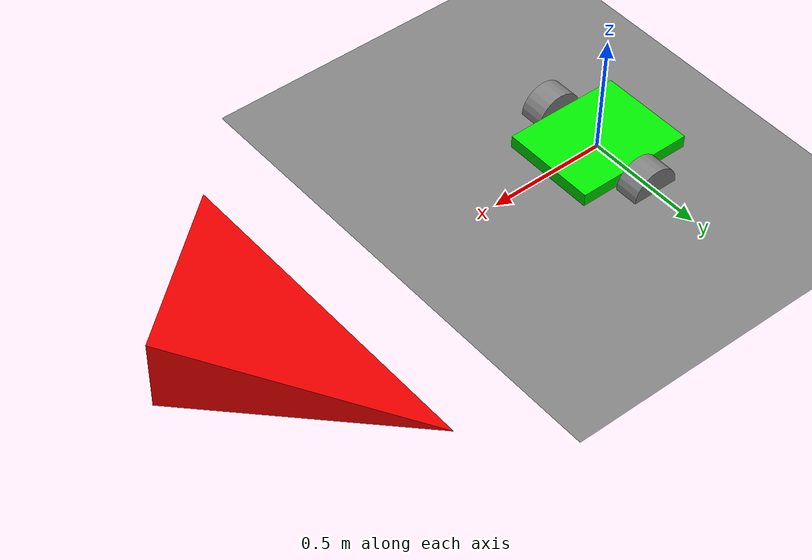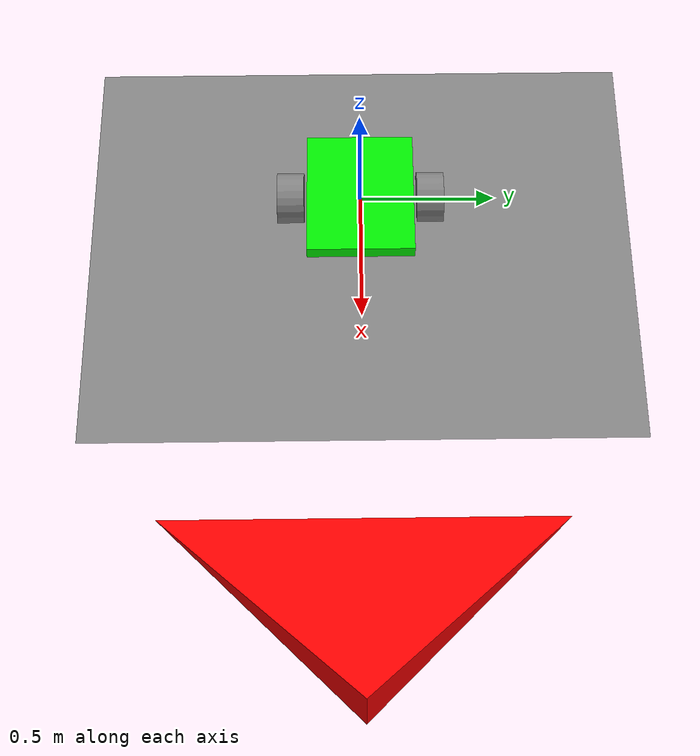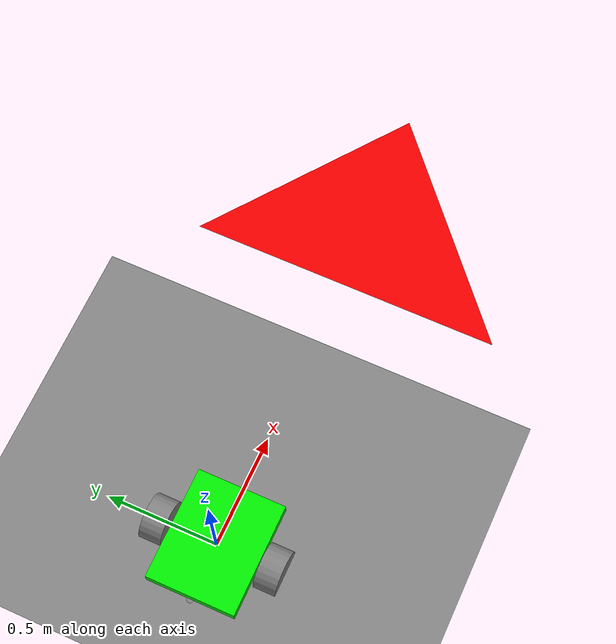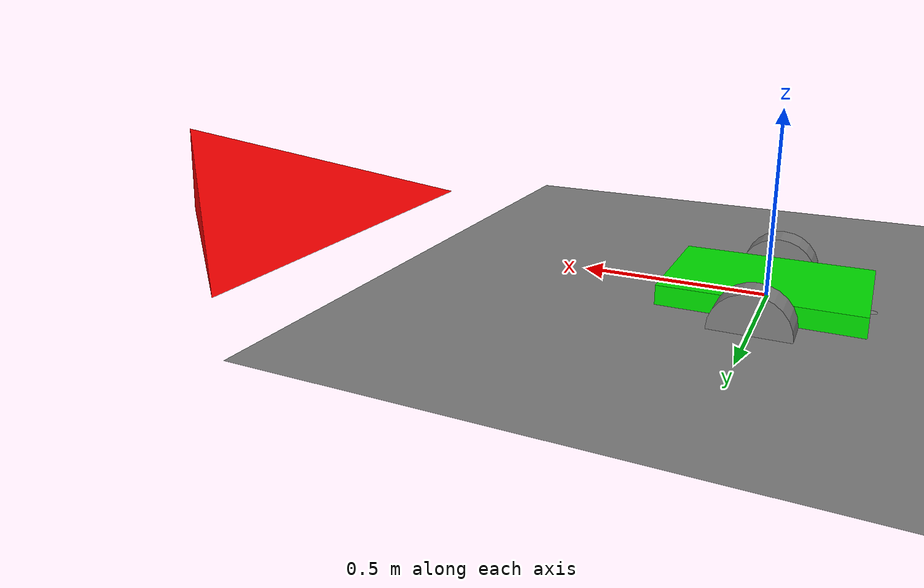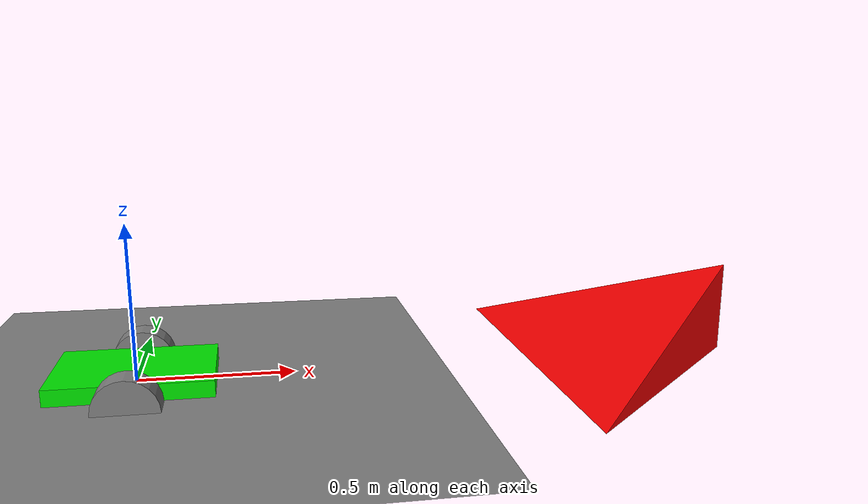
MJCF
<mujoco>
	<option timestep="0.01" integrator="RK4" gravity="0 0 -9.81">
		<flag energy="enable" contact="enable" />
	</option>

	<asset>
		<texture name="grid" type="2d" builtin="checker" width="512" height="512" rgb1=".9 .9 .9" rgb2=".1 .1 .1"/>
		<material name="grid" texture="grid" texrepeat="10 10" texuniform="true" reflectance=".2"/>

		<mesh name="tetrahedron" vertex="0 0 0  1 0 0  0 1 0  0 0 0.3"/>
	</asset>

	<worldbody>
        <light diffuse=".5 .5 .5" pos="0 0 3" dir="0 0 -1"/>

		<geom type="plane" size="1 1 0.1" material="grid"/>

		<geom type="mesh" mesh="tetrahedron" pos="2 0 0" euler="0 0 135" rgba="1 0 0 1" />

		<!-- Begin chassis -->
		<body name="chassis" pos="0 0 0" euler="0 0 0">
			<joint type="free"/>
			<geom type="box" size="0.25 0.2 0.05" rgba="0 0.9 0 1" mass="30"/>
			<site name="chassis_frame" pos="0 0 0" size="0.01" />
			<site name="rangefinder_frame" pos=".3 0 0" euler="0 90 0" size="0.01" />
			<!-- Rangefinders measure along the Z axis... rotate so that it does not point infinite space! -->

			<!-- Begin right wheel -->
			<body name = "wheel_r" pos="0 -0.26 0" euler="-90 0 0">
				<joint name="wheel_r_axis" type="hinge" axis = "0 0 1" pos="0 0 -0.0" damping=".03"/>
				<geom type="cylinder" size="0.1 0.05" rgba=".5 .5 .5 1" mass="1"/>
			</body>

			<!-- Begin left wheel -->
			<body name = "wheel_l" pos="0 0.26 0" euler="-90 0 0">
				<joint name="wheel_l_axis" type="hinge" axis = "0 0 1" pos="0 0 -0.0" damping=".03"/>
				<geom type="cylinder" size="0.1 0.05" rgba=".5 .5 .5 1" mass="1"/>
			</body>

			<!-- Rear "caster" wheel -->
			<geom name="sphere_wheel" pos="-0.25 0 -0.05" type="sphere" size=".05" condim="1" priority="1"/>

		</body>
	</worldbody>
	<!-- Actuators:
	https://mujoco.readthedocs.io/en/stable/XMLreference.html#actuator -->
	<actuator>
		<motor    name="torque_wheel_r" joint="wheel_r_axis" gear="1" ctrllimited="true" ctrlrange="-10 10"/>

		<motor    name="torque_wheel_l" joint="wheel_l_axis" gear="1" ctrllimited="true" ctrlrange="-10 10"/>
	</actuator>

	<!-- Sensors https://mujoco.readthedocs.io/en/stable/XMLreference.html#sensor -->
	<sensor>
		<framepos  objtype="site" objname="chassis_frame" />
		<velocimeter name="sensor_vel" site="chassis_frame" />
		<accelerometer name="sensor_accel" site="chassis_frame" />
		<gyro name="sensor_gyro" site="chassis_frame" noise="0"/>

		<rangefinder site="rangefinder_frame" noise="0" />
	</sensor>

</mujoco>
